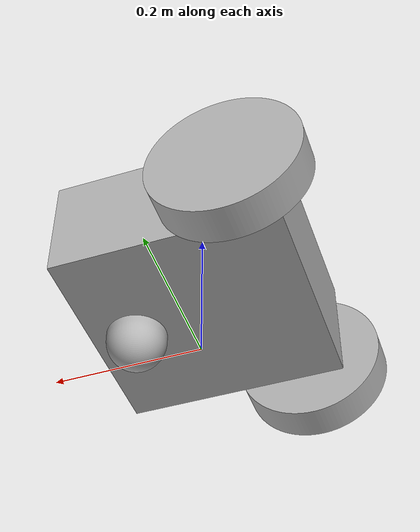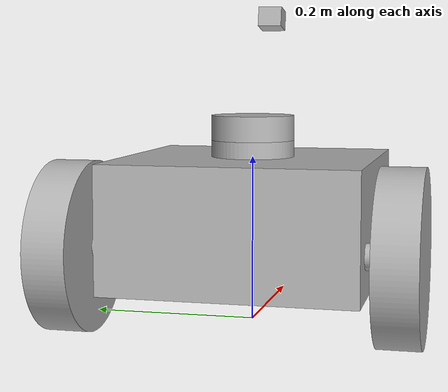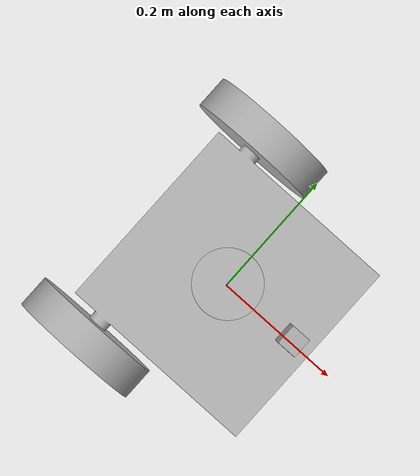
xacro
<?xml version="1.0" ?>
<robot name="diff_bot" xmlns:xacro="http://www.ros.org/wiki/xacro">

<xacro:include filename="$(find diff_bot_description)/urdf/materials.xacro" />
<xacro:include filename="$(find diff_bot_description)/urdf/diff_bot.trans" />
<xacro:include filename="$(find diff_bot_description)/urdf/diff_bot.gazebo" />
<xacro:include filename="$(find diff_bot_description)/urdf/lidar.xacro" />
<xacro:include filename="$(find diff_bot_description)/urdf/camera.xacro" />
<link name="base_link">
  <inertial>
    <origin xyz="-0.0001550322267581235 -2.127739672160312e-17 0.12593737077845393" rpy="0 0 0"/>
    <mass value="14.498982506076695"/>
    <inertia ixx="0.136029" iyy="0.135697" izz="0.215642" ixy="-0.0" iyz="-0.0" ixz="-5.8e-05"/>
  </inertial>
  <visual>
    <origin xyz="0 0 0" rpy="0 0 0"/>
    <geometry>
      <mesh filename="file://$(find diff_bot_description)/meshes/base_link.stl" scale="0.001 0.001 0.001"/>
    </geometry>
    <material name="silver"/>
  </visual>
  <collision>
    <origin xyz="0 0 0" rpy="0 0 0"/>
    <geometry>
      <mesh filename="file://$(find diff_bot_description)/meshes/base_link.stl" scale="0.001 0.001 0.001"/>
    </geometry>
  </collision>
</link>

<link name="right_wheel_1">
  <inertial>
    <origin xyz="0.0 -0.024999999999999994 0.0" rpy="0 0 0"/>
    <mass value="1.4608405839192535"/>
    <inertia ixx="0.003956" iyy="0.007304" izz="0.003956" ixy="-0.0" iyz="0.0" ixz="0.0"/>
  </inertial>
  <visual>
    <origin xyz="0.1 0.165 -0.1" rpy="0 0 0"/>
    <geometry>
      <mesh filename="file://$(find diff_bot_description)/meshes/right_wheel_1.stl" scale="0.001 0.001 0.001"/>
    </geometry>
    <material name="silver"/>
  </visual>
  <collision>
    <origin xyz="0.1 0.165 -0.1" rpy="0 0 0"/>
    <geometry>
      <mesh filename="file://$(find diff_bot_description)/meshes/right_wheel_1.stl" scale="0.001 0.001 0.001"/>
    </geometry>
  </collision>
</link>

<link name="left_wheel_1">
  <inertial>
    <origin xyz="0.0 0.024999999999999994 0.0" rpy="0 0 0"/>
    <mass value="1.4608405839192535"/>
    <inertia ixx="0.003956" iyy="0.007304" izz="0.003956" ixy="0.0" iyz="0.0" ixz="0.0"/>
  </inertial>
  <visual>
    <origin xyz="0.1 -0.165 -0.1" rpy="0 0 0"/>
    <geometry>
      <mesh filename="file://$(find diff_bot_description)/meshes/left_wheel_1.stl" scale="0.001 0.001 0.001"/>
    </geometry>
    <material name="silver"/>
  </visual>
  <collision>
    <origin xyz="0.1 -0.165 -0.1" rpy="0 0 0"/>
    <geometry>
      <mesh filename="file://$(find diff_bot_description)/meshes/left_wheel_1.stl" scale="0.001 0.001 0.001"/>
    </geometry>
  </collision>
</link>

<link name="castor_wheel_1">
  <inertial>
    <origin xyz="0.09 6.168348473141367e-18 -0.019545454545454543" rpy="0 0 0"/>
    <mass value="0.19536517515123722"/>
    <inertia ixx="9.6e-05" iyy="9.6e-05" izz="0.000134" ixy="-0.0" iyz="-0.0" ixz="0.0"/>
  </inertial>
  <visual>
    <origin xyz="-0.0 -0.0 -0.05" rpy="0 0 0"/>
    <geometry>
      <mesh filename="file://$(find diff_bot_description)/meshes/castor_wheel_1.stl" scale="0.001 0.001 0.001"/>
    </geometry>
    <material name="silver"/>
  </visual>
  <collision>
    <origin xyz="-0.0 -0.0 -0.05" rpy="0 0 0"/>
    <geometry>
      <mesh filename="file://$(find diff_bot_description)/meshes/castor_wheel_1.stl" scale="0.001 0.001 0.001"/>
    </geometry>
  </collision>
</link>

<joint name="right_wheel" type="continuous">
  <origin xyz="-0.1 -0.165 0.1" rpy="0 0 0"/>
  <parent link="base_link"/>
  <child link="right_wheel_1"/>
  <axis xyz="0.0 1.0 0.0"/>
</joint>

<joint name="left_wheel" type="continuous">
  <origin xyz="-0.1 0.165 0.1" rpy="0 0 0"/>
  <parent link="base_link"/>
  <child link="left_wheel_1"/>
  <axis xyz="0.0 1.0 0.0"/>
</joint>

<joint name="castor_wheel" type="fixed">
  <origin xyz="0.0 0.0 0.05" rpy="0 0 0"/>
  <parent link="base_link"/>
  <child link="castor_wheel_1"/>
</joint>

</robot>

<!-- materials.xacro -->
<robot name="diff_bot" xmlns:xacro="http://www.ros.org/wiki/xacro" >

<material name="silver">
  <color rgba="0.700 0.700 0.700 1.000"/>
</material>
<material name="black">
  <color rgba="0 0 0 1.000"/>
</material>
<material name="red">
  <color rgba="1 0 0 1.000"/>
</material>
</robot>

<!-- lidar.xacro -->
<robot xmlns:xacro="http://www.ros.org/wiki/xacro" >

<joint name="lidar" type="fixed">
  <origin xyz="0.0 0.0 0.22" rpy="0 0 0"/>
  <parent link="base_link"/>
  <child link="lidar_1"/>
</joint>

<link name="lidar_1">
  <inertial>
    <origin xyz="0.0 0.0 0.014999999999999986" rpy="0 0 0"/>
    <mass value="0.2497566159603886"/>
    <inertia ixx="0.000175" iyy="0.000175" izz="0.000312" ixy="-0.0" iyz="-0.0" ixz="-0.0"/>
  </inertial>
  <visual>
    <origin xyz="-0.0 -0.0 -0.22" rpy="0 0 0"/>
    <geometry>
      <mesh filename="file://$(find diff_bot_description)/meshes/lidar_1.stl" scale="0.001 0.001 0.001"/>
    </geometry>
    <material name="silver"/>
  </visual>
  <collision>
    <origin xyz="-0.0 -0.0 -0.22" rpy="0 0 0"/>
    <geometry>
      <mesh filename="file://$(find diff_bot_description)/meshes/lidar_1.stl" scale="0.001 0.001 0.001"/>
    </geometry>
  </collision>
</link>

<gazebo reference="lidar_1">
    <material>Gazebo/Red</material>

    <sensor name="laser" type="ray">
        <pose> 0 0 0 0 0 0 </pose>
        <visualize>true</visualize>
        <update_rate>10</update_rate>
        <ray>
            <scan>
                <horizontal>
                    <samples>360</samples>
                    <min_angle>-3.14</min_angle>
                    <max_angle>3.14</max_angle>
                </horizontal>
            </scan>
            <range>
                <min>0.3</min>
                <max>12</max>
            </range>
        </ray>
        <plugin name="laser_controller" filename="libgazebo_ros_ray_sensor.so">
            <ros>
                <remapping>~/out:=scan</remapping>
            </ros>
            <output_type>sensor_msgs/LaserScan</output_type>
            <frame_name>lidar_1</frame_name>
        </plugin>
    </sensor>
</gazebo>

</robot>

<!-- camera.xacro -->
<robot xmlns:xacro="http://www.ros.org/wiki/xacro" >

<joint name="camera" type="fixed">
  <origin xyz="0.15 0.0 0.35" rpy="0 0.20 0"/>
  <parent link="base_link"/>
  <child link="camera_1"/>
</joint>

<link name="camera_1">
  <inertial>
    <origin xyz="-0.04000000000000001 9.860761315262648e-34 0.012499999999999983" rpy="0 0 0"/>
    <mass value="0.02385"/>
    <inertia ixx="3e-06" iyy="3e-06" izz="4e-06" ixy="0.0" iyz="0.0" ixz="-0.0"/>
  </inertial>
  <visual>
    <origin xyz="-0.15 -0.0 -0.2" rpy="0 0 0"/>
    <geometry>
      <mesh filename="file://$(find diff_bot_description)/meshes/camera_1.stl" scale="0.001 0.001 0.001"/>
    </geometry>
    <material name="silver"/>
  </visual>
  <collision>
    <origin xyz="-0.15 -0.0 -0.2" rpy="0 0 0"/>
    <geometry>
      <mesh filename="file://$(find diff_bot_description)/meshes/camera_1.stl" scale="0.001 0.001 0.001"/>
    </geometry>
  </collision>
</link>

    <joint name="camera_optical_joint" type="fixed">
        <parent link="camera_1"/>
        <child link="camera_link_optical"/>
        <origin xyz="0 0 0" rpy="${-pi/2} 0 ${-pi/2}"/>
    </joint>

    <link name="camera_link_optical"></link>

    <gazebo reference="camera_1">
        <material>Gazebo/Black</material>

        <sensor name="camera" type="camera">
            <pose> 0 0 0 0 0 0 </pose>
            <visualize>true</visualize>
            <update_rate>10</update_rate>
            <camera>
                <horizontal_fov>1.089</horizontal_fov>
                <image>
                    <format>R8G8B8</format>
                    <width>640</width>
                    <height>480</height>
                </image>
                <clip>
                    <near>0.05</near>
                    <far>8.0</far>
                </clip>
            </camera>
            <plugin name="camera_controller" filename="libgazebo_ros_camera.so">
                <frame_name>camera_link_optical</frame_name>
            </plugin>
        </sensor>
    </gazebo>

</robot>
